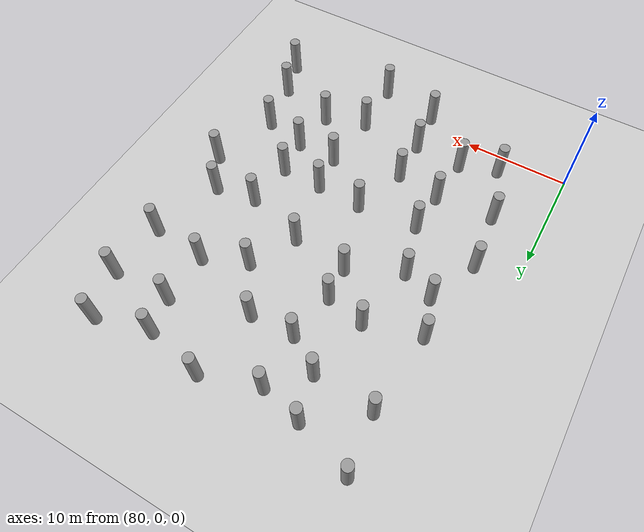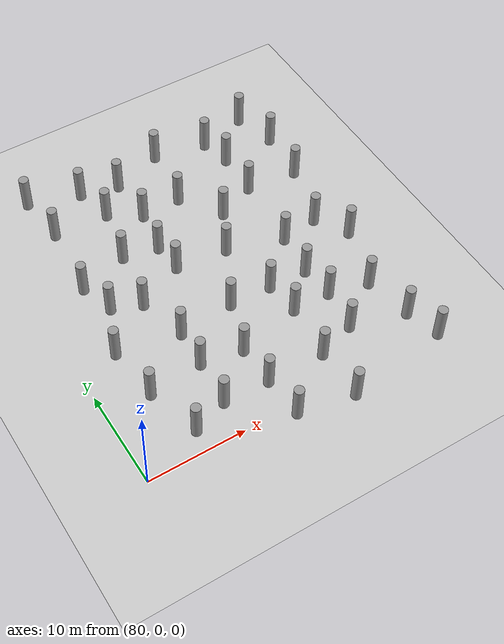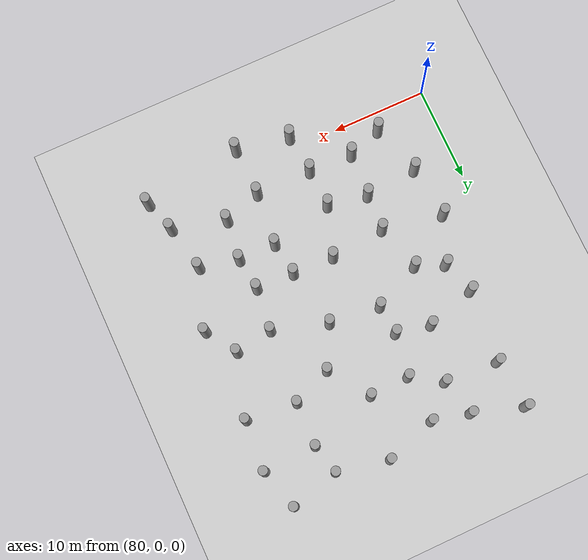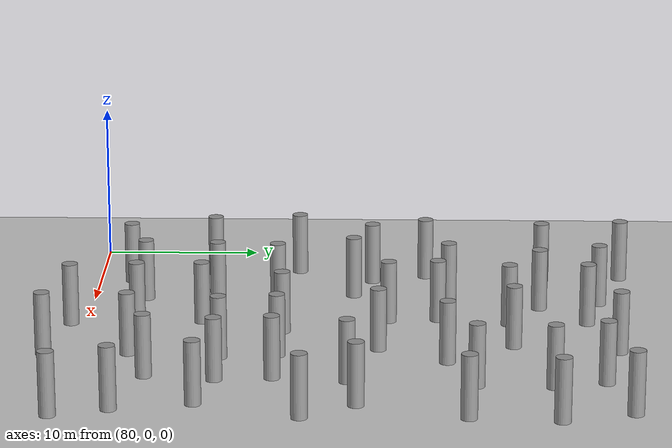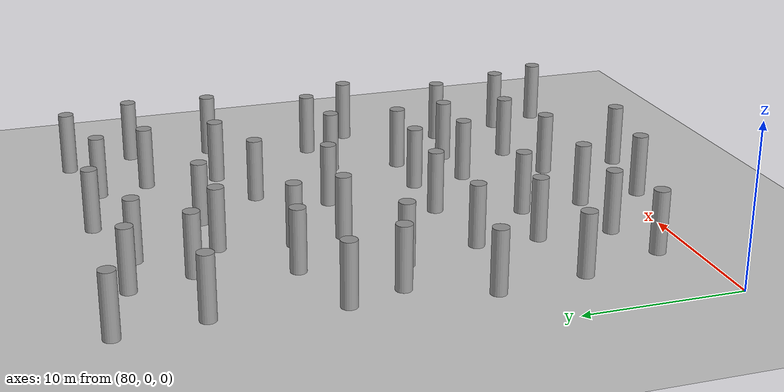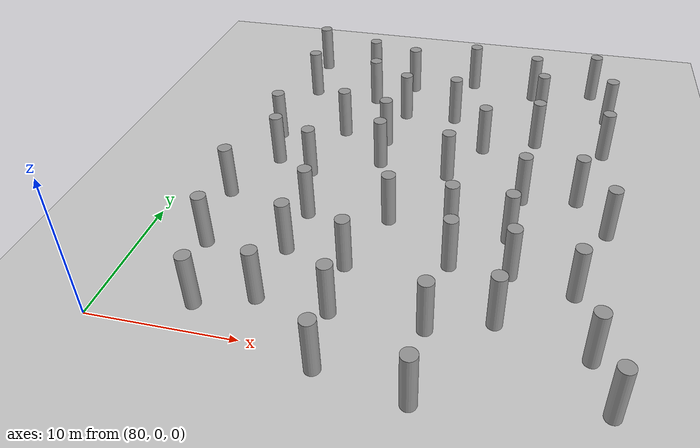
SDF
<sdf version="1.5">
 <world name="circle">
  <model name="ground">
   <static>1</static>
   <link name="link">
    <collision name="collision">
     <geometry><plane><normal>0 0 1</normal><size>100 100</size></plane></geometry>
     <surface><friction><ode><mu>100</mu><mu2>50</mu2></ode></friction></surface>
    </collision>
    <visual name="visual">
     <cast_shadows>0</cast_shadows>
     <geometry><plane><normal>0 0 1</normal><size>100 100</size></plane></geometry>
     <material>
      <script><uri>file://media/materials/scripts/gazebo.material</uri><name>Gazebo/Grey</name></script>
     </material>
    </visual>
    <velocity_decay><linear>0</linear><angular>0</angular></velocity_decay>
   </link>
  </model>
  <model name="unit_cylinder_233">
   <pose>86.1533524319 2.13308035864 2 3e-06 4e-06 -0</pose>
   <static>1</static>
   <self_collide>1</self_collide>
   <link name="link">
    <inertial>
     <mass>1</mass>
     <inertia><ixx>0.145833</ixx><ixy>0</ixy><ixz>0</ixz><iyy>0.145833</iyy><iyz>0</iyz><izz>0.125</izz></inertia>
    </inertial>
    <collision name="collision">
     <geometry><cylinder><radius>0.5</radius><length>4</length></cylinder></geometry>
    </collision>
    <visual name="visual">
     <geometry><cylinder><radius>0.5</radius><length>4</length></cylinder></geometry>
     <material>
      <script><name>Gazebo/Grey</name><uri>file://media/materials/scripts/gazebo.material</uri></script>
     </material>
    </visual>
    <collision name="cyl_collision">
     <geometry><cylinder><radius>0.5</radius><length>4</length></cylinder></geometry>
    </collision>
    <sensor name="my_contact" type="contact">
     <contact><collision>cyl_collision</collision></contact>
     <update_rate>5</update_rate>
    </sensor>
   </link>
  </model>
  <model name="unit_cylinder_234">
   <pose>84.5423036258 7.56341894502 2 3e-06 4e-06 -0</pose>
   <static>1</static>
   <self_collide>1</self_collide>
   <link name="link">
    <inertial>
     <mass>1</mass>
     <inertia><ixx>0.145833</ixx><ixy>0</ixy><ixz>0</ixz><iyy>0.145833</iyy><iyz>0</iyz><izz>0.125</izz></inertia>
    </inertial>
    <collision name="collision">
     <geometry><cylinder><radius>0.5</radius><length>4</length></cylinder></geometry>
    </collision>
    <visual name="visual">
     <geometry><cylinder><radius>0.5</radius><length>4</length></cylinder></geometry>
     <material>
      <script><name>Gazebo/Grey</name><uri>file://media/materials/scripts/gazebo.material</uri></script>
     </material>
    </visual>
    <collision name="cyl_collision">
     <geometry><cylinder><radius>0.5</radius><length>4</length></cylinder></geometry>
    </collision>
    <sensor name="my_contact" type="contact">
     <contact><collision>cyl_collision</collision></contact>
     <update_rate>5</update_rate>
    </sensor>
   </link>
  </model>
  <model name="unit_cylinder_235">
   <pose>83.9302544543 13.1529908259 2 3e-06 4e-06 -0</pose>
   <static>1</static>
   <self_collide>1</self_collide>
   <link name="link">
    <inertial>
     <mass>1</mass>
     <inertia><ixx>0.145833</ixx><ixy>0</ixy><ixz>0</ixz><iyy>0.145833</iyy><iyz>0</iyz><izz>0.125</izz></inertia>
    </inertial>
    <collision name="collision">
     <geometry><cylinder><radius>0.5</radius><length>4</length></cylinder></geometry>
    </collision>
    <visual name="visual">
     <geometry><cylinder><radius>0.5</radius><length>4</length></cylinder></geometry>
     <material>
      <script><name>Gazebo/Grey</name><uri>file://media/materials/scripts/gazebo.material</uri></script>
     </material>
    </visual>
    <collision name="cyl_collision">
     <geometry><cylinder><radius>0.5</radius><length>4</length></cylinder></geometry>
    </collision>
    <sensor name="my_contact" type="contact">
     <contact><collision>cyl_collision</collision></contact>
     <update_rate>5</update_rate>
    </sensor>
   </link>
  </model>
  <model name="unit_cylinder_236">
   <pose>85.969340617 18.0110272208 2 3e-06 4e-06 -0</pose>
   <static>1</static>
   <self_collide>1</self_collide>
   <link name="link">
    <inertial>
     <mass>1</mass>
     <inertia><ixx>0.145833</ixx><ixy>0</ixy><ixz>0</ixz><iyy>0.145833</iyy><iyz>0</iyz><izz>0.125</izz></inertia>
    </inertial>
    <collision name="collision">
     <geometry><cylinder><radius>0.5</radius><length>4</length></cylinder></geometry>
    </collision>
    <visual name="visual">
     <geometry><cylinder><radius>0.5</radius><length>4</length></cylinder></geometry>
     <material>
      <script><name>Gazebo/Grey</name><uri>file://media/materials/scripts/gazebo.material</uri></script>
     </material>
    </visual>
    <collision name="cyl_collision">
     <geometry><cylinder><radius>0.5</radius><length>4</length></cylinder></geometry>
    </collision>
    <sensor name="my_contact" type="contact">
     <contact><collision>cyl_collision</collision></contact>
     <update_rate>5</update_rate>
    </sensor>
   </link>
  </model>
  <model name="unit_cylinder_237">
   <pose>84.8770278709 21.5088141264 2 3e-06 4e-06 -0</pose>
   <static>1</static>
   <self_collide>1</self_collide>
   <link name="link">
    <inertial>
     <mass>1</mass>
     <inertia><ixx>0.145833</ixx><ixy>0</ixy><ixz>0</ixz><iyy>0.145833</iyy><iyz>0</iyz><izz>0.125</izz></inertia>
    </inertial>
    <collision name="collision">
     <geometry><cylinder><radius>0.5</radius><length>4</length></cylinder></geometry>
    </collision>
    <visual name="visual">
     <geometry><cylinder><radius>0.5</radius><length>4</length></cylinder></geometry>
     <material>
      <script><name>Gazebo/Grey</name><uri>file://media/materials/scripts/gazebo.material</uri></script>
     </material>
    </visual>
    <collision name="cyl_collision">
     <geometry><cylinder><radius>0.5</radius><length>4</length></cylinder></geometry>
    </collision>
    <sensor name="my_contact" type="contact">
     <contact><collision>cyl_collision</collision></contact>
     <update_rate>5</update_rate>
    </sensor>
   </link>
  </model>
  <model name="unit_cylinder_238">
   <pose>85.6023030734 29.1470778829 2 3e-06 4e-06 -0</pose>
   <static>1</static>
   <self_collide>1</self_collide>
   <link name="link">
    <inertial>
     <mass>1</mass>
     <inertia><ixx>0.145833</ixx><ixy>0</ixy><ixz>0</ixz><iyy>0.145833</iyy><iyz>0</iyz><izz>0.125</izz></inertia>
    </inertial>
    <collision name="collision">
     <geometry><cylinder><radius>0.5</radius><length>4</length></cylinder></geometry>
    </collision>
    <visual name="visual">
     <geometry><cylinder><radius>0.5</radius><length>4</length></cylinder></geometry>
     <material>
      <script><name>Gazebo/Grey</name><uri>file://media/materials/scripts/gazebo.material</uri></script>
     </material>
    </visual>
    <collision name="cyl_collision">
     <geometry><cylinder><radius>0.5</radius><length>4</length></cylinder></geometry>
    </collision>
    <sensor name="my_contact" type="contact">
     <contact><collision>cyl_collision</collision></contact>
     <update_rate>5</update_rate>
    </sensor>
   </link>
  </model>
  <model name="unit_cylinder_239">
   <pose>85.0377784638 34.3543541123 2 3e-06 4e-06 -0</pose>
   <static>1</static>
   <self_collide>1</self_collide>
   <link name="link">
    <inertial>
     <mass>1</mass>
     <inertia><ixx>0.145833</ixx><ixy>0</ixy><ixz>0</ixz><iyy>0.145833</iyy><iyz>0</iyz><izz>0.125</izz></inertia>
    </inertial>
    <collision name="collision">
     <geometry><cylinder><radius>0.5</radius><length>4</length></cylinder></geometry>
    </collision>
    <visual name="visual">
     <geometry><cylinder><radius>0.5</radius><length>4</length></cylinder></geometry>
     <material>
      <script><name>Gazebo/Grey</name><uri>file://media/materials/scripts/gazebo.material</uri></script>
     </material>
    </visual>
    <collision name="cyl_collision">
     <geometry><cylinder><radius>0.5</radius><length>4</length></cylinder></geometry>
    </collision>
    <sensor name="my_contact" type="contact">
     <contact><collision>cyl_collision</collision></contact>
     <update_rate>5</update_rate>
    </sensor>
   </link>
  </model>
  <model name="unit_cylinder_248">
   <pose>89.7524499579 3.37341773149 2 3e-06 4e-06 -0</pose>
   <static>1</static>
   <self_collide>1</self_collide>
   <link name="link">
    <inertial>
     <mass>1</mass>
     <inertia><ixx>0.145833</ixx><ixy>0</ixy><ixz>0</ixz><iyy>0.145833</iyy><iyz>0</iyz><izz>0.125</izz></inertia>
    </inertial>
    <collision name="collision">
     <geometry><cylinder><radius>0.5</radius><length>4</length></cylinder></geometry>
    </collision>
    <visual name="visual">
     <geometry><cylinder><radius>0.5</radius><length>4</length></cylinder></geometry>
     <material>
      <script><name>Gazebo/Grey</name><uri>file://media/materials/scripts/gazebo.material</uri></script>
     </material>
    </visual>
    <collision name="cyl_collision">
     <geometry><cylinder><radius>0.5</radius><length>4</length></cylinder></geometry>
    </collision>
    <sensor name="my_contact" type="contact">
     <contact><collision>cyl_collision</collision></contact>
     <update_rate>5</update_rate>
    </sensor>
   </link>
  </model>
  <model name="unit_cylinder_249">
   <pose>90.0702973048 8.04982203245 2 3e-06 4e-06 -0</pose>
   <static>1</static>
   <self_collide>1</self_collide>
   <link name="link">
    <inertial>
     <mass>1</mass>
     <inertia><ixx>0.145833</ixx><ixy>0</ixy><ixz>0</ixz><iyy>0.145833</iyy><iyz>0</iyz><izz>0.125</izz></inertia>
    </inertial>
    <collision name="collision">
     <geometry><cylinder><radius>0.5</radius><length>4</length></cylinder></geometry>
    </collision>
    <visual name="visual">
     <geometry><cylinder><radius>0.5</radius><length>4</length></cylinder></geometry>
     <material>
      <script><name>Gazebo/Grey</name><uri>file://media/materials/scripts/gazebo.material</uri></script>
     </material>
    </visual>
    <collision name="cyl_collision">
     <geometry><cylinder><radius>0.5</radius><length>4</length></cylinder></geometry>
    </collision>
    <sensor name="my_contact" type="contact">
     <contact><collision>cyl_collision</collision></contact>
     <update_rate>5</update_rate>
    </sensor>
   </link>
  </model>
  <model name="unit_cylinder_250">
   <pose>90.292104298 11.9422608396 2 3e-06 4e-06 -0</pose>
   <static>1</static>
   <self_collide>1</self_collide>
   <link name="link">
    <inertial>
     <mass>1</mass>
     <inertia><ixx>0.145833</ixx><ixy>0</ixy><ixz>0</ixz><iyy>0.145833</iyy><iyz>0</iyz><izz>0.125</izz></inertia>
    </inertial>
    <collision name="collision">
     <geometry><cylinder><radius>0.5</radius><length>4</length></cylinder></geometry>
    </collision>
    <visual name="visual">
     <geometry><cylinder><radius>0.5</radius><length>4</length></cylinder></geometry>
     <material>
      <script><name>Gazebo/Grey</name><uri>file://media/materials/scripts/gazebo.material</uri></script>
     </material>
    </visual>
    <collision name="cyl_collision">
     <geometry><cylinder><radius>0.5</radius><length>4</length></cylinder></geometry>
    </collision>
    <sensor name="my_contact" type="contact">
     <contact><collision>cyl_collision</collision></contact>
     <update_rate>5</update_rate>
    </sensor>
   </link>
  </model>
  <model name="unit_cylinder_251">
   <pose>88.9245800933 16.8334551451 2 3e-06 4e-06 -0</pose>
   <static>1</static>
   <self_collide>1</self_collide>
   <link name="link">
    <inertial>
     <mass>1</mass>
     <inertia><ixx>0.145833</ixx><ixy>0</ixy><ixz>0</ixz><iyy>0.145833</iyy><iyz>0</iyz><izz>0.125</izz></inertia>
    </inertial>
    <collision name="collision">
     <geometry><cylinder><radius>0.5</radius><length>4</length></cylinder></geometry>
    </collision>
    <visual name="visual">
     <geometry><cylinder><radius>0.5</radius><length>4</length></cylinder></geometry>
     <material>
      <script><name>Gazebo/Grey</name><uri>file://media/materials/scripts/gazebo.material</uri></script>
     </material>
    </visual>
    <collision name="cyl_collision">
     <geometry><cylinder><radius>0.5</radius><length>4</length></cylinder></geometry>
    </collision>
    <sensor name="my_contact" type="contact">
     <contact><collision>cyl_collision</collision></contact>
     <update_rate>5</update_rate>
    </sensor>
   </link>
  </model>
  <model name="unit_cylinder_252">
   <pose>90.0045958709 22.9895827702 2 3e-06 4e-06 -0</pose>
   <static>1</static>
   <self_collide>1</self_collide>
   <link name="link">
    <inertial>
     <mass>1</mass>
     <inertia><ixx>0.145833</ixx><ixy>0</ixy><ixz>0</ixz><iyy>0.145833</iyy><iyz>0</iyz><izz>0.125</izz></inertia>
    </inertial>
    <collision name="collision">
     <geometry><cylinder><radius>0.5</radius><length>4</length></cylinder></geometry>
    </collision>
    <visual name="visual">
     <geometry><cylinder><radius>0.5</radius><length>4</length></cylinder></geometry>
     <material>
      <script><name>Gazebo/Grey</name><uri>file://media/materials/scripts/gazebo.material</uri></script>
     </material>
    </visual>
    <collision name="cyl_collision">
     <geometry><cylinder><radius>0.5</radius><length>4</length></cylinder></geometry>
    </collision>
    <sensor name="my_contact" type="contact">
     <contact><collision>cyl_collision</collision></contact>
     <update_rate>5</update_rate>
    </sensor>
   </link>
  </model>
  <model name="unit_cylinder_253">
   <pose>91.2553784058 28.7984217749 2 3e-06 4e-06 -0</pose>
   <static>1</static>
   <self_collide>1</self_collide>
   <link name="link">
    <inertial>
     <mass>1</mass>
     <inertia><ixx>0.145833</ixx><ixy>0</ixy><ixz>0</ixz><iyy>0.145833</iyy><iyz>0</iyz><izz>0.125</izz></inertia>
    </inertial>
    <collision name="collision">
     <geometry><cylinder><radius>0.5</radius><length>4</length></cylinder></geometry>
    </collision>
    <visual name="visual">
     <geometry><cylinder><radius>0.5</radius><length>4</length></cylinder></geometry>
     <material>
      <script><name>Gazebo/Grey</name><uri>file://media/materials/scripts/gazebo.material</uri></script>
     </material>
    </visual>
    <collision name="cyl_collision">
     <geometry><cylinder><radius>0.5</radius><length>4</length></cylinder></geometry>
    </collision>
    <sensor name="my_contact" type="contact">
     <contact><collision>cyl_collision</collision></contact>
     <update_rate>5</update_rate>
    </sensor>
   </link>
  </model>
  <model name="unit_cylinder_254">
   <pose>90.294265577 32.6768271274 2 3e-06 4e-06 -0</pose>
   <static>1</static>
   <self_collide>1</self_collide>
   <link name="link">
    <inertial>
     <mass>1</mass>
     <inertia><ixx>0.145833</ixx><ixy>0</ixy><ixz>0</ixz><iyy>0.145833</iyy><iyz>0</iyz><izz>0.125</izz></inertia>
    </inertial>
    <collision name="collision">
     <geometry><cylinder><radius>0.5</radius><length>4</length></cylinder></geometry>
    </collision>
    <visual name="visual">
     <geometry><cylinder><radius>0.5</radius><length>4</length></cylinder></geometry>
     <material>
      <script><name>Gazebo/Grey</name><uri>file://media/materials/scripts/gazebo.material</uri></script>
     </material>
    </visual>
    <collision name="cyl_collision">
     <geometry><cylinder><radius>0.5</radius><length>4</length></cylinder></geometry>
    </collision>
    <sensor name="my_contact" type="contact">
     <contact><collision>cyl_collision</collision></contact>
     <update_rate>5</update_rate>
    </sensor>
   </link>
  </model>
  <model name="unit_cylinder_262">
   <pose>94.7917268861 -1.01179025788 2 3e-06 4e-06 -0</pose>
   <static>1</static>
   <self_collide>1</self_collide>
   <link name="link">
    <inertial>
     <mass>1</mass>
     <inertia><ixx>0.145833</ixx><ixy>0</ixy><ixz>0</ixz><iyy>0.145833</iyy><iyz>0</iyz><izz>0.125</izz></inertia>
    </inertial>
    <collision name="collision">
     <geometry><cylinder><radius>0.5</radius><length>4</length></cylinder></geometry>
    </collision>
    <visual name="visual">
     <geometry><cylinder><radius>0.5</radius><length>4</length></cylinder></geometry>
     <material>
      <script><name>Gazebo/Grey</name><uri>file://media/materials/scripts/gazebo.material</uri></script>
     </material>
    </visual>
    <collision name="cyl_collision">
     <geometry><cylinder><radius>0.5</radius><length>4</length></cylinder></geometry>
    </collision>
    <sensor name="my_contact" type="contact">
     <contact><collision>cyl_collision</collision></contact>
     <update_rate>5</update_rate>
    </sensor>
   </link>
  </model>
  <model name="unit_cylinder_263">
   <pose>94.4243648973 3.18292212978 2 3e-06 4e-06 -0</pose>
   <static>1</static>
   <self_collide>1</self_collide>
   <link name="link">
    <inertial>
     <mass>1</mass>
     <inertia><ixx>0.145833</ixx><ixy>0</ixy><ixz>0</ixz><iyy>0.145833</iyy><iyz>0</iyz><izz>0.125</izz></inertia>
    </inertial>
    <collision name="collision">
     <geometry><cylinder><radius>0.5</radius><length>4</length></cylinder></geometry>
    </collision>
    <visual name="visual">
     <geometry><cylinder><radius>0.5</radius><length>4</length></cylinder></geometry>
     <material>
      <script><name>Gazebo/Grey</name><uri>file://media/materials/scripts/gazebo.material</uri></script>
     </material>
    </visual>
    <collision name="cyl_collision">
     <geometry><cylinder><radius>0.5</radius><length>4</length></cylinder></geometry>
    </collision>
    <sensor name="my_contact" type="contact">
     <contact><collision>cyl_collision</collision></contact>
     <update_rate>5</update_rate>
    </sensor>
   </link>
  </model>
  <model name="unit_cylinder_264">
   <pose>94.2960185896 7.29452672476 2 3e-06 4e-06 -0</pose>
   <static>1</static>
   <self_collide>1</self_collide>
   <link name="link">
    <inertial>
     <mass>1</mass>
     <inertia><ixx>0.145833</ixx><ixy>0</ixy><ixz>0</ixz><iyy>0.145833</iyy><iyz>0</iyz><izz>0.125</izz></inertia>
    </inertial>
    <collision name="collision">
     <geometry><cylinder><radius>0.5</radius><length>4</length></cylinder></geometry>
    </collision>
    <visual name="visual">
     <geometry><cylinder><radius>0.5</radius><length>4</length></cylinder></geometry>
     <material>
      <script><name>Gazebo/Grey</name><uri>file://media/materials/scripts/gazebo.material</uri></script>
     </material>
    </visual>
    <collision name="cyl_collision">
     <geometry><cylinder><radius>0.5</radius><length>4</length></cylinder></geometry>
    </collision>
    <sensor name="my_contact" type="contact">
     <contact><collision>cyl_collision</collision></contact>
     <update_rate>5</update_rate>
    </sensor>
   </link>
  </model>
  <model name="unit_cylinder_265">
   <pose>96.0582533789 12.4651124884 2 3e-06 4e-06 -0</pose>
   <static>1</static>
   <self_collide>1</self_collide>
   <link name="link">
    <inertial>
     <mass>1</mass>
     <inertia><ixx>0.145833</ixx><ixy>0</ixy><ixz>0</ixz><iyy>0.145833</iyy><iyz>0</iyz><izz>0.125</izz></inertia>
    </inertial>
    <collision name="collision">
     <geometry><cylinder><radius>0.5</radius><length>4</length></cylinder></geometry>
    </collision>
    <visual name="visual">
     <geometry><cylinder><radius>0.5</radius><length>4</length></cylinder></geometry>
     <material>
      <script><name>Gazebo/Grey</name><uri>file://media/materials/scripts/gazebo.material</uri></script>
     </material>
    </visual>
    <collision name="cyl_collision">
     <geometry><cylinder><radius>0.5</radius><length>4</length></cylinder></geometry>
    </collision>
    <sensor name="my_contact" type="contact">
     <contact><collision>cyl_collision</collision></contact>
     <update_rate>5</update_rate>
    </sensor>
   </link>
  </model>
  <model name="unit_cylinder_266">
   <pose>93.8922984579 19.1290038204 2 3e-06 4e-06 -0</pose>
   <static>1</static>
   <self_collide>1</self_collide>
   <link name="link">
    <inertial>
     <mass>1</mass>
     <inertia><ixx>0.145833</ixx><ixy>0</ixy><ixz>0</ixz><iyy>0.145833</iyy><iyz>0</iyz><izz>0.125</izz></inertia>
    </inertial>
    <collision name="collision">
     <geometry><cylinder><radius>0.5</radius><length>4</length></cylinder></geometry>
    </collision>
    <visual name="visual">
     <geometry><cylinder><radius>0.5</radius><length>4</length></cylinder></geometry>
     <material>
      <script><name>Gazebo/Grey</name><uri>file://media/materials/scripts/gazebo.material</uri></script>
     </material>
    </visual>
    <collision name="cyl_collision">
     <geometry><cylinder><radius>0.5</radius><length>4</length></cylinder></geometry>
    </collision>
    <sensor name="my_contact" type="contact">
     <contact><collision>cyl_collision</collision></contact>
     <update_rate>5</update_rate>
    </sensor>
   </link>
  </model>
  <model name="unit_cylinder_267">
   <pose>93.632426985 22.2580795303 2 3e-06 4e-06 -0</pose>
   <static>1</static>
   <self_collide>1</self_collide>
   <link name="link">
    <inertial>
     <mass>1</mass>
     <inertia><ixx>0.145833</ixx><ixy>0</ixy><ixz>0</ixz><iyy>0.145833</iyy><iyz>0</iyz><izz>0.125</izz></inertia>
    </inertial>
    <collision name="collision">
     <geometry><cylinder><radius>0.5</radius><length>4</length></cylinder></geometry>
    </collision>
    <visual name="visual">
     <geometry><cylinder><radius>0.5</radius><length>4</length></cylinder></geometry>
     <material>
      <script><name>Gazebo/Grey</name><uri>file://media/materials/scripts/gazebo.material</uri></script>
     </material>
    </visual>
    <collision name="cyl_collision">
     <geometry><cylinder><radius>0.5</radius><length>4</length></cylinder></geometry>
    </collision>
    <sensor name="my_contact" type="contact">
     <contact><collision>cyl_collision</collision></contact>
     <update_rate>5</update_rate>
    </sensor>
   </link>
  </model>
  <model name="unit_cylinder_268">
   <pose>94.3954916943 26.7614778729 2 3e-06 4e-06 -0</pose>
   <static>1</static>
   <self_collide>1</self_collide>
   <link name="link">
    <inertial>
     <mass>1</mass>
     <inertia><ixx>0.145833</ixx><ixy>0</ixy><ixz>0</ixz><iyy>0.145833</iyy><iyz>0</iyz><izz>0.125</izz></inertia>
    </inertial>
    <collision name="collision">
     <geometry><cylinder><radius>0.5</radius><length>4</length></cylinder></geometry>
    </collision>
    <visual name="visual">
     <geometry><cylinder><radius>0.5</radius><length>4</length></cylinder></geometry>
     <material>
      <script><name>Gazebo/Grey</name><uri>file://media/materials/scripts/gazebo.material</uri></script>
     </material>
    </visual>
    <collision name="cyl_collision">
     <geometry><cylinder><radius>0.5</radius><length>4</length></cylinder></geometry>
    </collision>
    <sensor name="my_contact" type="contact">
     <contact><collision>cyl_collision</collision></contact>
     <update_rate>5</update_rate>
    </sensor>
   </link>
  </model>
  <model name="unit_cylinder_269">
   <pose>94.1806670577 31.727459618 2 3e-06 4e-06 -0</pose>
   <static>1</static>
   <self_collide>1</self_collide>
   <link name="link">
    <inertial>
     <mass>1</mass>
     <inertia><ixx>0.145833</ixx><ixy>0</ixy><ixz>0</ixz><iyy>0.145833</iyy><iyz>0</iyz><izz>0.125</izz></inertia>
    </inertial>
    <collision name="collision">
     <geometry><cylinder><radius>0.5</radius><length>4</length></cylinder></geometry>
    </collision>
    <visual name="visual">
     <geometry><cylinder><radius>0.5</radius><length>4</length></cylinder></geometry>
     <material>
      <script><name>Gazebo/Grey</name><uri>file://media/materials/scripts/gazebo.material</uri></script>
     </material>
    </visual>
    <collision name="cyl_collision">
     <geometry><cylinder><radius>0.5</radius><length>4</length></cylinder></geometry>
    </collision>
    <sensor name="my_contact" type="contact">
     <contact><collision>cyl_collision</collision></contact>
     <update_rate>5</update_rate>
    </sensor>
   </link>
  </model>
  <model name="unit_cylinder_277">
   <pose>100.441383389 -2.1069703283 2 3e-06 4e-06 -0</pose>
   <static>1</static>
   <self_collide>1</self_collide>
   <link name="link">
    <inertial>
     <mass>1</mass>
     <inertia><ixx>0.145833</ixx><ixy>0</ixy><ixz>0</ixz><iyy>0.145833</iyy><iyz>0</iyz><izz>0.125</izz></inertia>
    </inertial>
    <collision name="collision">
     <geometry><cylinder><radius>0.5</radius><length>4</length></cylinder></geometry>
    </collision>
    <visual name="visual">
     <geometry><cylinder><radius>0.5</radius><length>4</length></cylinder></geometry>
     <material>
      <script><name>Gazebo/Grey</name><uri>file://media/materials/scripts/gazebo.material</uri></script>
     </material>
    </visual>
    <collision name="cyl_collision">
     <geometry><cylinder><radius>0.5</radius><length>4</length></cylinder></geometry>
    </collision>
    <sensor name="my_contact" type="contact">
     <contact><collision>cyl_collision</collision></contact>
     <update_rate>5</update_rate>
    </sensor>
   </link>
  </model>
  <model name="unit_cylinder_278">
   <pose>100.349913984 3.1121022136 2 3e-06 4e-06 -0</pose>
   <static>1</static>
   <self_collide>1</self_collide>
   <link name="link">
    <inertial>
     <mass>1</mass>
     <inertia><ixx>0.145833</ixx><ixy>0</ixy><ixz>0</ixz><iyy>0.145833</iyy><iyz>0</iyz><izz>0.125</izz></inertia>
    </inertial>
    <collision name="collision">
     <geometry><cylinder><radius>0.5</radius><length>4</length></cylinder></geometry>
    </collision>
    <visual name="visual">
     <geometry><cylinder><radius>0.5</radius><length>4</length></cylinder></geometry>
     <material>
      <script><name>Gazebo/Grey</name><uri>file://media/materials/scripts/gazebo.material</uri></script>
     </material>
    </visual>
    <collision name="cyl_collision">
     <geometry><cylinder><radius>0.5</radius><length>4</length></cylinder></geometry>
    </collision>
    <sensor name="my_contact" type="contact">
     <contact><collision>cyl_collision</collision></contact>
     <update_rate>5</update_rate>
    </sensor>
   </link>
  </model>
  <model name="unit_cylinder_279">
   <pose>100.892396272 8.76447514801 2 3e-06 4e-06 -0</pose>
   <static>1</static>
   <self_collide>1</self_collide>
   <link name="link">
    <inertial>
     <mass>1</mass>
     <inertia><ixx>0.145833</ixx><ixy>0</ixy><ixz>0</ixz><iyy>0.145833</iyy><iyz>0</iyz><izz>0.125</izz></inertia>
    </inertial>
    <collision name="collision">
     <geometry><cylinder><radius>0.5</radius><length>4</length></cylinder></geometry>
    </collision>
    <visual name="visual">
     <geometry><cylinder><radius>0.5</radius><length>4</length></cylinder></geometry>
     <material>
      <script><name>Gazebo/Grey</name><uri>file://media/materials/scripts/gazebo.material</uri></script>
     </material>
    </visual>
    <collision name="cyl_collision">
     <geometry><cylinder><radius>0.5</radius><length>4</length></cylinder></geometry>
    </collision>
    <sensor name="my_contact" type="contact">
     <contact><collision>cyl_collision</collision></contact>
     <update_rate>5</update_rate>
    </sensor>
   </link>
  </model>
  <model name="unit_cylinder_280">
   <pose>100.440282397 12.3230636003 2 3e-06 4e-06 -0</pose>
   <static>1</static>
   <self_collide>1</self_collide>
   <link name="link">
    <inertial>
     <mass>1</mass>
     <inertia><ixx>0.145833</ixx><ixy>0</ixy><ixz>0</ixz><iyy>0.145833</iyy><iyz>0</iyz><izz>0.125</izz></inertia>
    </inertial>
    <collision name="collision">
     <geometry><cylinder><radius>0.5</radius><length>4</length></cylinder></geometry>
    </collision>
    <visual name="visual">
     <geometry><cylinder><radius>0.5</radius><length>4</length></cylinder></geometry>
     <material>
      <script><name>Gazebo/Grey</name><uri>file://media/materials/scripts/gazebo.material</uri></script>
     </material>
    </visual>
    <collision name="cyl_collision">
     <geometry><cylinder><radius>0.5</radius><length>4</length></cylinder></geometry>
    </collision>
    <sensor name="my_contact" type="contact">
     <contact><collision>cyl_collision</collision></contact>
     <update_rate>5</update_rate>
    </sensor>
   </link>
  </model>
  <model name="unit_cylinder_281">
   <pose>99.2463019826 18.5312048157 2 3e-06 4e-06 -0</pose>
   <static>1</static>
   <self_collide>1</self_collide>
   <link name="link">
    <inertial>
     <mass>1</mass>
     <inertia><ixx>0.145833</ixx><ixy>0</ixy><ixz>0</ixz><iyy>0.145833</iyy><iyz>0</iyz><izz>0.125</izz></inertia>
    </inertial>
    <collision name="collision">
     <geometry><cylinder><radius>0.5</radius><length>4</length></cylinder></geometry>
    </collision>
    <visual name="visual">
     <geometry><cylinder><radius>0.5</radius><length>4</length></cylinder></geometry>
     <material>
      <script><name>Gazebo/Grey</name><uri>file://media/materials/scripts/gazebo.material</uri></script>
     </material>
    </visual>
    <collision name="cyl_collision">
     <geometry><cylinder><radius>0.5</radius><length>4</length></cylinder></geometry>
    </collision>
    <sensor name="my_contact" type="contact">
     <contact><collision>cyl_collision</collision></contact>
     <update_rate>5</update_rate>
    </sensor>
   </link>
  </model>
  <model name="unit_cylinder_282">
   <pose>101.492739076 22.7745475853 2 3e-06 4e-06 -0</pose>
   <static>1</static>
   <self_collide>1</self_collide>
   <link name="link">
    <inertial>
     <mass>1</mass>
     <inertia><ixx>0.145833</ixx><ixy>0</ixy><ixz>0</ixz><iyy>0.145833</iyy><iyz>0</iyz><izz>0.125</izz></inertia>
    </inertial>
    <collision name="collision">
     <geometry><cylinder><radius>0.5</radius><length>4</length></cylinder></geometry>
    </collision>
    <visual name="visual">
     <geometry><cylinder><radius>0.5</radius><length>4</length></cylinder></geometry>
     <material>
      <script><name>Gazebo/Grey</name><uri>file://media/materials/scripts/gazebo.material</uri></script>
     </material>
    </visual>
    <collision name="cyl_collision">
     <geometry><cylinder><radius>0.5</radius><length>4</length></cylinder></geometry>
    </collision>
    <sensor name="my_contact" type="contact">
     <contact><collision>cyl_collision</collision></contact>
     <update_rate>5</update_rate>
    </sensor>
   </link>
  </model>
  <model name="unit_cylinder_283">
   <pose>98.5845871683 26.9183414444 2 3e-06 4e-06 -0</pose>
   <static>1</static>
   <self_collide>1</self_collide>
   <link name="link">
    <inertial>
     <mass>1</mass>
     <inertia><ixx>0.145833</ixx><ixy>0</ixy><ixz>0</ixz><iyy>0.145833</iyy><iyz>0</iyz><izz>0.125</izz></inertia>
    </inertial>
    <collision name="collision">
     <geometry><cylinder><radius>0.5</radius><length>4</length></cylinder></geometry>
    </collision>
    <visual name="visual">
     <geometry><cylinder><radius>0.5</radius><length>4</length></cylinder></geometry>
     <material>
      <script><name>Gazebo/Grey</name><uri>file://media/materials/scripts/gazebo.material</uri></script>
     </material>
    </visual>
    <collision name="cyl_collision">
     <geometry><cylinder><radius>0.5</radius><length>4</length></cylinder></geometry>
    </collision>
    <sensor name="my_contact" type="contact">
     <contact><collision>cyl_collision</collision></contact>
     <update_rate>5</update_rate>
    </sensor>
   </link>
  </model>
  <model name="unit_cylinder_284">
   <pose>99.4880499087 33.4372088189 2 3e-06 4e-06 -0</pose>
   <static>1</static>
   <self_collide>1</self_collide>
   <link name="link">
    <inertial>
     <mass>1</mass>
     <inertia><ixx>0.145833</ixx><ixy>0</ixy><ixz>0</ixz><iyy>0.145833</iyy><iyz>0</iyz><izz>0.125</izz></inertia>
    </inertial>
    <collision name="collision">
     <geometry><cylinder><radius>0.5</radius><length>4</length></cylinder></geometry>
    </collision>
    <visual name="visual">
     <geometry><cylinder><radius>0.5</radius><length>4</length></cylinder></geometry>
     <material>
      <script><name>Gazebo/Grey</name><uri>file://media/materials/scripts/gazebo.material</uri></script>
     </material>
    </visual>
    <collision name="cyl_collision">
     <geometry><cylinder><radius>0.5</radius><length>4</length></cylinder></geometry>
    </collision>
    <sensor name="my_contact" type="contact">
     <contact><collision>cyl_collision</collision></contact>
     <update_rate>5</update_rate>
    </sensor>
   </link>
  </model>
  <model name="unit_cylinder_293">
   <pose>104.304975909 4.42928890689 2 3e-06 4e-06 -0</pose>
   <static>1</static>
   <self_collide>1</self_collide>
   <link name="link">
    <inertial>
     <mass>1</mass>
     <inertia><ixx>0.145833</ixx><ixy>0</ixy><ixz>0</ixz><iyy>0.145833</iyy><iyz>0</iyz><izz>0.125</izz></inertia>
    </inertial>
    <collision name="collision">
     <geometry><cylinder><radius>0.5</radius><length>4</length></cylinder></geometry>
    </collision>
    <visual name="visual">
     <geometry><cylinder><radius>0.5</radius><length>4</length></cylinder></geometry>
     <material>
      <script><name>Gazebo/Grey</name><uri>file://media/materials/scripts/gazebo.material</uri></script>
     </material>
    </visual>
    <collision name="cyl_collision">
     <geometry><cylinder><radius>0.5</radius><length>4</length></cylinder></geometry>
    </collision>
    <sensor name="my_contact" type="contact">
     <contact><collision>cyl_collision</collision></contact>
     <update_rate>5</update_rate>
    </sensor>
   </link>
  </model>
  <model name="unit_cylinder_294">
   <pose>104.829052764 8.71298396964 2 3e-06 4e-06 -0</pose>
   <static>1</static>
   <self_collide>1</self_collide>
   <link name="link">
    <inertial>
     <mass>1</mass>
     <inertia><ixx>0.145833</ixx><ixy>0</ixy><ixz>0</ixz><iyy>0.145833</iyy><iyz>0</iyz><izz>0.125</izz></inertia>
    </inertial>
    <collision name="collision">
     <geometry><cylinder><radius>0.5</radius><length>4</length></cylinder></geometry>
    </collision>
    <visual name="visual">
     <geometry><cylinder><radius>0.5</radius><length>4</length></cylinder></geometry>
     <material>
      <script><name>Gazebo/Grey</name><uri>file://media/materials/scripts/gazebo.material</uri></script>
     </material>
    </visual>
    <collision name="cyl_collision">
     <geometry><cylinder><radius>0.5</radius><length>4</length></cylinder></geometry>
    </collision>
    <sensor name="my_contact" type="contact">
     <contact><collision>cyl_collision</collision></contact>
     <update_rate>5</update_rate>
    </sensor>
   </link>
  </model>
  <model name="unit_cylinder_295">
   <pose>104.449545411 12.1852344849 2 3e-06 4e-06 -0</pose>
   <static>1</static>
   <self_collide>1</self_collide>
   <link name="link">
    <inertial>
     <mass>1</mass>
     <inertia><ixx>0.145833</ixx><ixy>0</ixy><ixz>0</ixz><iyy>0.145833</iyy><iyz>0</iyz><izz>0.125</izz></inertia>
    </inertial>
    <collision name="collision">
     <geometry><cylinder><radius>0.5</radius><length>4</length></cylinder></geometry>
    </collision>
    <visual name="visual">
     <geometry><cylinder><radius>0.5</radius><length>4</length></cylinder></geometry>
     <material>
      <script><name>Gazebo/Grey</name><uri>file://media/materials/scripts/gazebo.material</uri></script>
     </material>
    </visual>
    <collision name="cyl_collision">
     <geometry><cylinder><radius>0.5</radius><length>4</length></cylinder></geometry>
    </collision>
    <sensor name="my_contact" type="contact">
     <contact><collision>cyl_collision</collision></contact>
     <update_rate>5</update_rate>
    </sensor>
   </link>
  </model>
  <model name="unit_cylinder_296">
   <pose>104.974003489 16.7102905283 2 3e-06 4e-06 -0</pose>
   <static>1</static>
   <self_collide>1</self_collide>
   <link name="link">
    <inertial>
     <mass>1</mass>
     <inertia><ixx>0.145833</ixx><ixy>0</ixy><ixz>0</ixz><iyy>0.145833</iyy><iyz>0</iyz><izz>0.125</izz></inertia>
    </inertial>
    <collision name="collision">
     <geometry><cylinder><radius>0.5</radius><length>4</length></cylinder></geometry>
    </collision>
    <visual name="visual">
     <geometry><cylinder><radius>0.5</radius><length>4</length></cylinder></geometry>
     <material>
      <script><name>Gazebo/Grey</name><uri>file://media/materials/scripts/gazebo.material</uri></script>
     </material>
    </visual>
    <collision name="cyl_collision">
     <geometry><cylinder><radius>0.5</radius><length>4</length></cylinder></geometry>
    </collision>
    <sensor name="my_contact" type="contact">
     <contact><collision>cyl_collision</collision></contact>
     <update_rate>5</update_rate>
    </sensor>
   </link>
  </model>
  <model name="unit_cylinder_297">
   <pose>105.563810966 24.4703256727 2 3e-06 4e-06 -0</pose>
   <static>1</static>
   <self_collide>1</self_collide>
   <link name="link">
    <inertial>
     <mass>1</mass>
     <inertia><ixx>0.145833</ixx><ixy>0</ixy><ixz>0</ixz><iyy>0.145833</iyy><iyz>0</iyz><izz>0.125</izz></inertia>
    </inertial>
    <collision name="collision">
     <geometry><cylinder><radius>0.5</radius><length>4</length></cylinder></geometry>
    </collision>
    <visual name="visual">
     <geometry><cylinder><radius>0.5</radius><length>4</length></cylinder></geometry>
     <material>
      <script><name>Gazebo/Grey</name><uri>file://media/materials/scripts/gazebo.material</uri></script>
     </material>
    </visual>
    <collision name="cyl_collision">
     <geometry><cylinder><radius>0.5</radius><length>4</length></cylinder></geometry>
    </collision>
    <sensor name="my_contact" type="contact">
     <contact><collision>cyl_collision</collision></contact>
     <update_rate>5</update_rate>
    </sensor>
   </link>
  </model>
  <model name="unit_cylinder_298">
   <pose>105.69797691 29.1248488872 2 3e-06 4e-06 -0</pose>
   <static>1</static>
   <self_collide>1</self_collide>
   <link name="link">
    <inertial>
     <mass>1</mass>
     <inertia><ixx>0.145833</ixx><ixy>0</ixy><ixz>0</ixz><iyy>0.145833</iyy><iyz>0</iyz><izz>0.125</izz></inertia>
    </inertial>
    <collision name="collision">
     <geometry><cylinder><radius>0.5</radius><length>4</length></cylinder></geometry>
    </collision>
    <visual name="visual">
     <geometry><cylinder><radius>0.5</radius><length>4</length></cylinder></geometry>
     <material>
      <script><name>Gazebo/Grey</name><uri>file://media/materials/scripts/gazebo.material</uri></script>
     </material>
    </visual>
    <collision name="cyl_collision">
     <geometry><cylinder><radius>0.5</radius><length>4</length></cylinder></geometry>
    </collision>
    <sensor name="my_contact" type="contact">
     <contact><collision>cyl_collision</collision></contact>
     <update_rate>5</update_rate>
    </sensor>
   </link>
  </model>
  <model name="unit_cylinder_299">
   <pose>104.937596388 32.2891039823 2 3e-06 4e-06 -0</pose>
   <static>1</static>
   <self_collide>1</self_collide>
   <link name="link">
    <inertial>
     <mass>1</mass>
     <inertia><ixx>0.145833</ixx><ixy>0</ixy><ixz>0</ixz><iyy>0.145833</iyy><iyz>0</iyz><izz>0.125</izz></inertia>
    </inertial>
    <collision name="collision">
     <geometry><cylinder><radius>0.5</radius><length>4</length></cylinder></geometry>
    </collision>
    <visual name="visual">
     <geometry><cylinder><radius>0.5</radius><length>4</length></cylinder></geometry>
     <material>
      <script><name>Gazebo/Grey</name><uri>file://media/materials/scripts/gazebo.material</uri></script>
     </material>
    </visual>
    <collision name="cyl_collision">
     <geometry><cylinder><radius>0.5</radius><length>4</length></cylinder></geometry>
    </collision>
    <sensor name="my_contact" type="contact">
     <contact><collision>cyl_collision</collision></contact>
     <update_rate>5</update_rate>
    </sensor>
   </link>
  </model>
  <model name="unit_cylinder_307">
   <pose>110.953258976 -0.57066335718 2 3e-06 4e-06 -0</pose>
   <static>1</static>
   <self_collide>1</self_collide>
   <link name="link">
    <inertial>
     <mass>1</mass>
     <inertia><ixx>0.145833</ixx><ixy>0</ixy><ixz>0</ixz><iyy>0.145833</iyy><iyz>0</iyz><izz>0.125</izz></inertia>
    </inertial>
    <collision name="collision">
     <geometry><cylinder><radius>0.5</radius><length>4</length></cylinder></geometry>
    </collision>
    <visual name="visual">
     <geometry><cylinder><radius>0.5</radius><length>4</length></cylinder></geometry>
     <material>
      <script><name>Gazebo/Grey</name><uri>file://media/materials/scripts/gazebo.material</uri></script>
     </material>
    </visual>
    <collision name="cyl_collision">
     <geometry><cylinder><radius>0.5</radius><length>4</length></cylinder></geometry>
    </collision>
    <sensor name="my_contact" type="contact">
     <contact><collision>cyl_collision</collision></contact>
     <update_rate>5</update_rate>
    </sensor>
   </link>
  </model>
  <model name="unit_cylinder_308">
   <pose>109.888064701 2.86431839376 2 3e-06 4e-06 -0</pose>
   <static>1</static>
   <self_collide>1</self_collide>
   <link name="link">
    <inertial>
     <mass>1</mass>
     <inertia><ixx>0.145833</ixx><ixy>0</ixy><ixz>0</ixz><iyy>0.145833</iyy><iyz>0</iyz><izz>0.125</izz></inertia>
    </inertial>
    <collision name="collision">
     <geometry><cylinder><radius>0.5</radius><length>4</length></cylinder></geometry>
    </collision>
    <visual name="visual">
     <geometry><cylinder><radius>0.5</radius><length>4</length></cylinder></geometry>
     <material>
      <script><name>Gazebo/Grey</name><uri>file://media/materials/scripts/gazebo.material</uri></script>
     </material>
    </visual>
    <collision name="cyl_collision">
     <geometry><cylinder><radius>0.5</radius><length>4</length></cylinder></geometry>
    </collision>
    <sensor name="my_contact" type="contact">
     <contact><collision>cyl_collision</collision></contact>
     <update_rate>5</update_rate>
    </sensor>
   </link>
  </model>
  <model name="unit_cylinder_309">
   <pose>108.90926845 7.74243437871 2 3e-06 4e-06 -0</pose>
   <static>1</static>
   <self_collide>1</self_collide>
   <link name="link">
    <inertial>
     <mass>1</mass>
     <inertia><ixx>0.145833</ixx><ixy>0</ixy><ixz>0</ixz><iyy>0.145833</iyy><iyz>0</iyz><izz>0.125</izz></inertia>
    </inertial>
    <collision name="collision">
     <geometry><cylinder><radius>0.5</radius><length>4</length></cylinder></geometry>
    </collision>
    <visual name="visual">
     <geometry><cylinder><radius>0.5</radius><length>4</length></cylinder></geometry>
     <material>
      <script><name>Gazebo/Grey</name><uri>file://media/materials/scripts/gazebo.material</uri></script>
     </material>
    </visual>
    <collision name="cyl_collision">
     <geometry><cylinder><radius>0.5</radius><length>4</length></cylinder></geometry>
    </collision>
    <sensor name="my_contact" type="contact">
     <contact><collision>cyl_collision</collision></contact>
     <update_rate>5</update_rate>
    </sensor>
   </link>
  </model>
  <model name="unit_cylinder_310">
   <pose>110.982008783 14.0660317691 2 3e-06 4e-06 -0</pose>
   <static>1</static>
   <self_collide>1</self_collide>
   <link name="link">
    <inertial>
     <mass>1</mass>
     <inertia><ixx>0.145833</ixx><ixy>0</ixy><ixz>0</ixz><iyy>0.145833</iyy><iyz>0</iyz><izz>0.125</izz></inertia>
    </inertial>
    <collision name="collision">
     <geometry><cylinder><radius>0.5</radius><length>4</length></cylinder></geometry>
    </collision>
    <visual name="visual">
     <geometry><cylinder><radius>0.5</radius><length>4</length></cylinder></geometry>
     <material>
      <script><name>Gazebo/Grey</name><uri>file://media/materials/scripts/gazebo.material</uri></script>
     </material>
    </visual>
    <collision name="cyl_collision">
     <geometry><cylinder><radius>0.5</radius><length>4</length></cylinder></geometry>
    </collision>
    <sensor name="my_contact" type="contact">
     <contact><collision>cyl_collision</collision></contact>
     <update_rate>5</update_rate>
    </sensor>
   </link>
  </model>
  <model name="unit_cylinder_311">
   <pose>108.923264794 17.3172196068 2 3e-06 4e-06 -0</pose>
   <static>1</static>
   <self_collide>1</self_collide>
   <link name="link">
    <inertial>
     <mass>1</mass>
     <inertia><ixx>0.145833</ixx><ixy>0</ixy><ixz>0</ixz><iyy>0.145833</iyy><iyz>0</iyz><izz>0.125</izz></inertia>
    </inertial>
    <collision name="collision">
     <geometry><cylinder><radius>0.5</radius><length>4</length></cylinder></geometry>
    </collision>
    <visual name="visual">
     <geometry><cylinder><radius>0.5</radius><length>4</length></cylinder></geometry>
     <material>
      <script><name>Gazebo/Grey</name><uri>file://media/materials/scripts/gazebo.material</uri></script>
     </material>
    </visual>
    <collision name="cyl_collision">
     <geometry><cylinder><radius>0.5</radius><length>4</length></cylinder></geometry>
    </collision>
    <sensor name="my_contact" type="contact">
     <contact><collision>cyl_collision</collision></contact>
     <update_rate>5</update_rate>
    </sensor>
   </link>
  </model>
  <model name="unit_cylinder_312">
   <pose>110.875790219 23.9128247585 2 3e-06 4e-06 -0</pose>
   <static>1</static>
   <self_collide>1</self_collide>
   <link name="link">
    <inertial>
     <mass>1</mass>
     <inertia><ixx>0.145833</ixx><ixy>0</ixy><ixz>0</ixz><iyy>0.145833</iyy><iyz>0</iyz><izz>0.125</izz></inertia>
    </inertial>
    <collision name="collision">
     <geometry><cylinder><radius>0.5</radius><length>4</length></cylinder></geometry>
    </collision>
    <visual name="visual">
     <geometry><cylinder><radius>0.5</radius><length>4</length></cylinder></geometry>
     <material>
      <script><name>Gazebo/Grey</name><uri>file://media/materials/scripts/gazebo.material</uri></script>
     </material>
    </visual>
    <collision name="cyl_collision">
     <geometry><cylinder><radius>0.5</radius><length>4</length></cylinder></geometry>
    </collision>
    <sensor name="my_contact" type="contact">
     <contact><collision>cyl_collision</collision></contact>
     <update_rate>5</update_rate>
    </sensor>
   </link>
  </model>
  <model name="unit_cylinder_313">
   <pose>111.298571986 29.3031869607 2 3e-06 4e-06 -0</pose>
   <static>1</static>
   <self_collide>1</self_collide>
   <link name="link">
    <inertial>
     <mass>1</mass>
     <inertia><ixx>0.145833</ixx><ixy>0</ixy><ixz>0</ixz><iyy>0.145833</iyy><iyz>0</iyz><izz>0.125</izz></inertia>
    </inertial>
    <collision name="collision">
     <geometry><cylinder><radius>0.5</radius><length>4</length></cylinder></geometry>
    </collision>
    <visual name="visual">
     <geometry><cylinder><radius>0.5</radius><length>4</length></cylinder></geometry>
     <material>
      <script><name>Gazebo/Grey</name><uri>file://media/materials/scripts/gazebo.material</uri></script>
     </material>
    </visual>
    <collision name="cyl_collision">
     <geometry><cylinder><radius>0.5</radius><length>4</length></cylinder></geometry>
    </collision>
    <sensor name="my_contact" type="contact">
     <contact><collision>cyl_collision</collision></contact>
     <update_rate>5</update_rate>
    </sensor>
   </link>
  </model>
  <model name="unit_cylinder_314">
   <pose>110.045759402 33.6216797693 2 3e-06 4e-06 -0</pose>
   <static>1</static>
   <self_collide>1</self_collide>
   <link name="link">
    <inertial>
     <mass>1</mass>
     <inertia><ixx>0.145833</ixx><ixy>0</ixy><ixz>0</ixz><iyy>0.145833</iyy><iyz>0</iyz><izz>0.125</izz></inertia>
    </inertial>
    <collision name="collision">
     <geometry><cylinder><radius>0.5</radius><length>4</length></cylinder></geometry>
    </collision>
    <visual name="visual">
     <geometry><cylinder><radius>0.5</radius><length>4</length></cylinder></geometry>
     <material>
      <script><name>Gazebo/Grey</name><uri>file://media/materials/scripts/gazebo.material</uri></script>
     </material>
    </visual>
    <collision name="cyl_collision">
     <geometry><cylinder><radius>0.5</radius><length>4</length></cylinder></geometry>
    </collision>
    <sensor name="my_contact" type="contact">
     <contact><collision>cyl_collision</collision></contact>
     <update_rate>5</update_rate>
    </sensor>
   </link>
  </model>
 </world>
</sdf>
